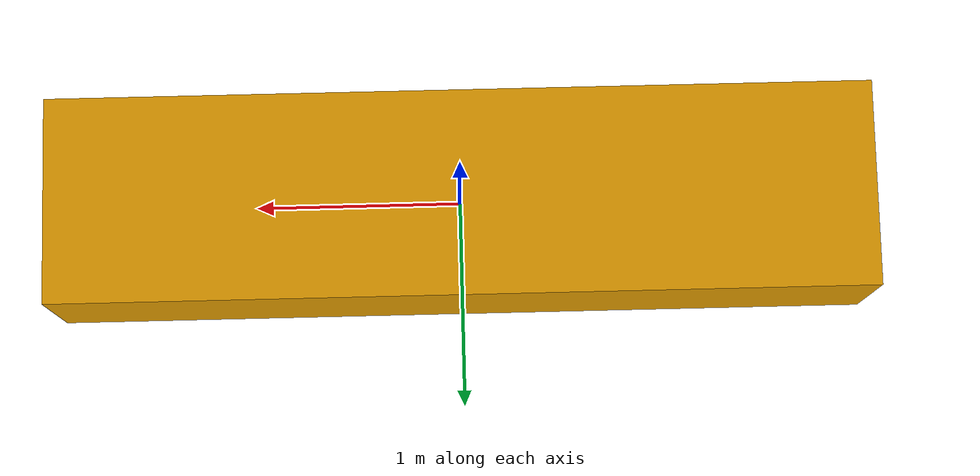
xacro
<?xml version="1.0" encoding="utf-8" ?>
<robot name="box" xmlns:xacro="http://www.ros.org/wiki/xacro">
    <!-- simple calc
     + - * / %

     -->
    <xacro:property name="length" value="2"></xacro:property>
    <xacro:property name="width" value="2"></xacro:property>
    <xacro:property name="height" value="2"></xacro:property>

    <link name="base_link">
        <visual>
            <geometry>
                <box size="${length*2} ${width-1} ${height/3}"></box>
            </geometry>
        </visual>
    </link>
</robot>
